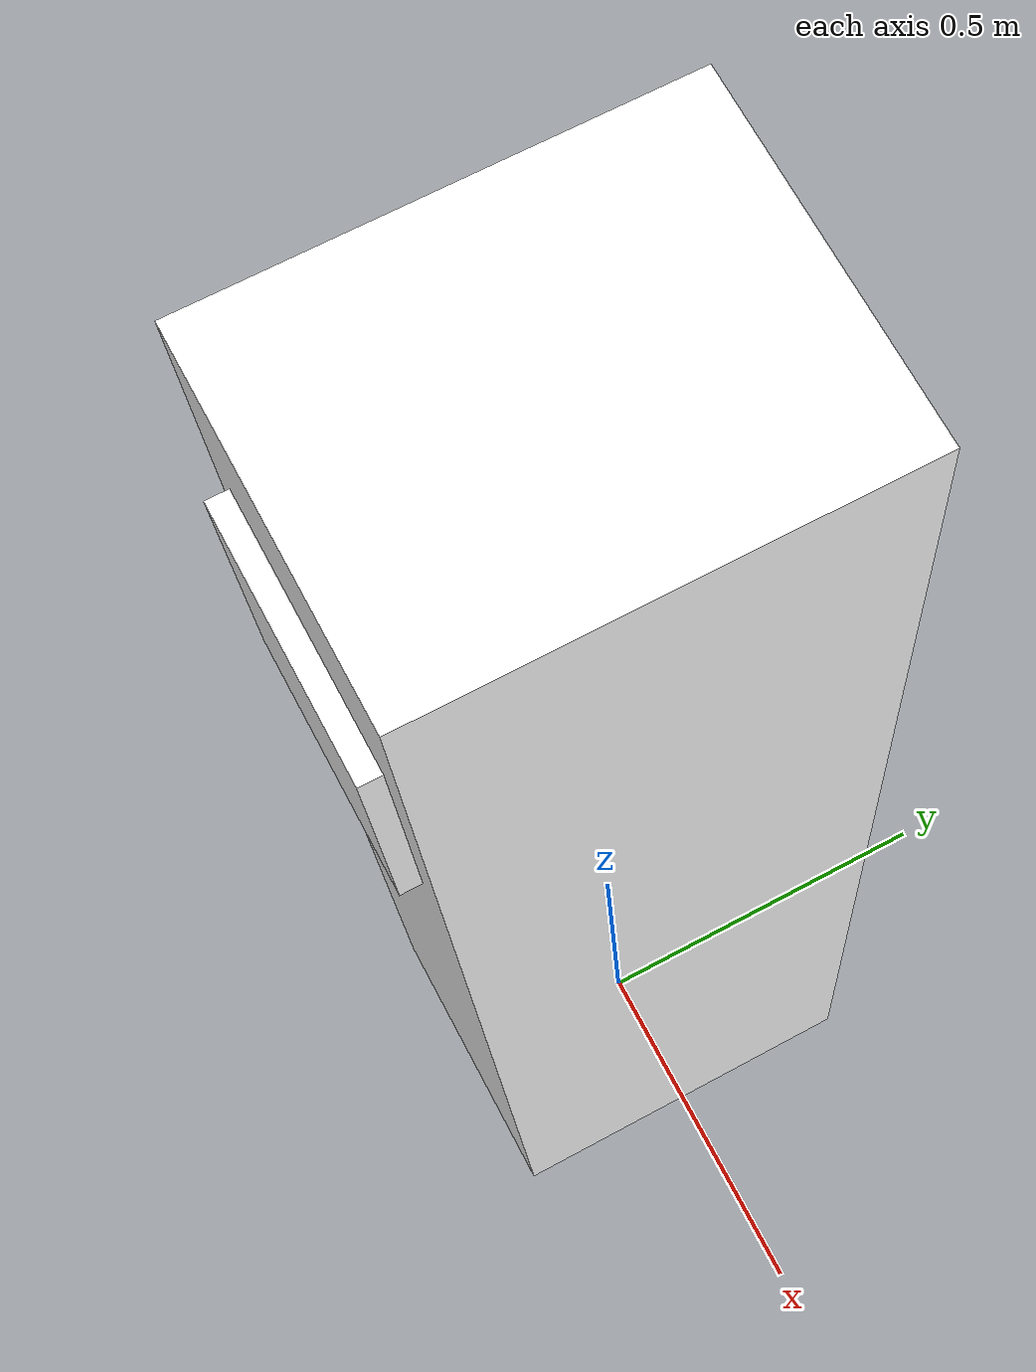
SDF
<?xml version="1.0"?>
<sdf version="1.10">
  <model name="locker">
    <static>true</static>
      <link name="body">
        <collision name="body_col"><pose>0 0 0.90 0 0 0</pose>
          <geometry><box><size>0.40 0.50 1.80</size></box></geometry></collision>
        <visual name="body_vis"><pose>0 0 0.90 0 0 0</pose>
          <geometry><box><size>0.40 0.50 1.80</size></box></geometry>
          <material>
          <diffuse>1 1 1 1</diffuse>
          <specular>0.15 0.15 0.15 1</specular>
          <pbr><metal>
            <albedo_map>model://slam_assets/materials/textures/metal_brushed.png</albedo_map>
            <roughness>0.85</roughness><metalness>0.0</metalness>
          </metal></pbr>
        </material>
        </visual>
        <visual name="vent_vis"><pose>0 -0.26 1.45 0 0 0</pose>
          <geometry><box><size>0.30 0.03 0.30</size></box></geometry>
          <material>
          <diffuse>1 1 1 1</diffuse>
          <specular>0.15 0.15 0.15 1</specular>
          <pbr><metal>
            <albedo_map>model://slam_assets/materials/textures/metal_panel.png</albedo_map>
            <roughness>0.85</roughness><metalness>0.0</metalness>
          </metal></pbr>
        </material>
        </visual>
      </link>
  </model>
</sdf>
